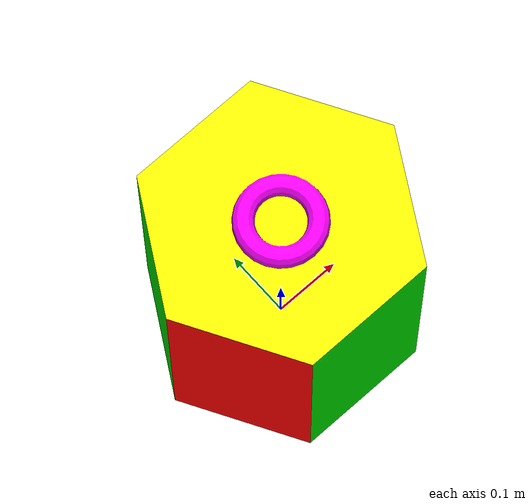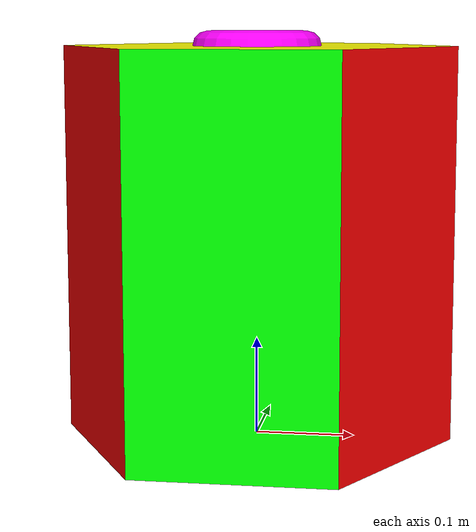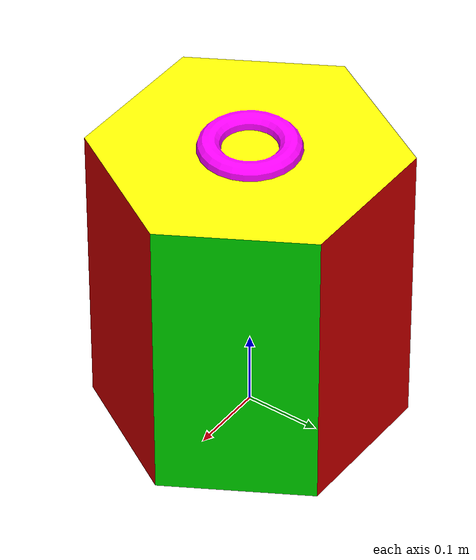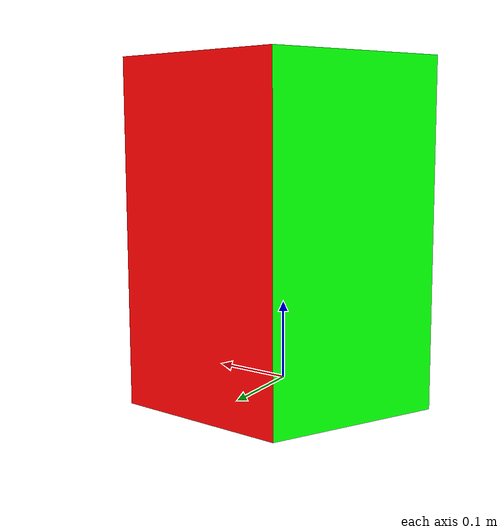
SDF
<?xml version="1.0"?>
<sdf version="1.6">
  <model name="6prism_with_annexe">
    <static>true</static>
    <pose>0 0 0 0 0 0</pose>
    <link name="link1">

      <visual name="visual1">
        <geometry>
          <mesh>
            <uri>model://6prism_with_annexe/meshes/6prism_with_annexe.DAE</uri>
   	    <scale>1 1 1</scale>
          </mesh>
        </geometry>
      </visual>

    </link>
  </model>
</sdf>
